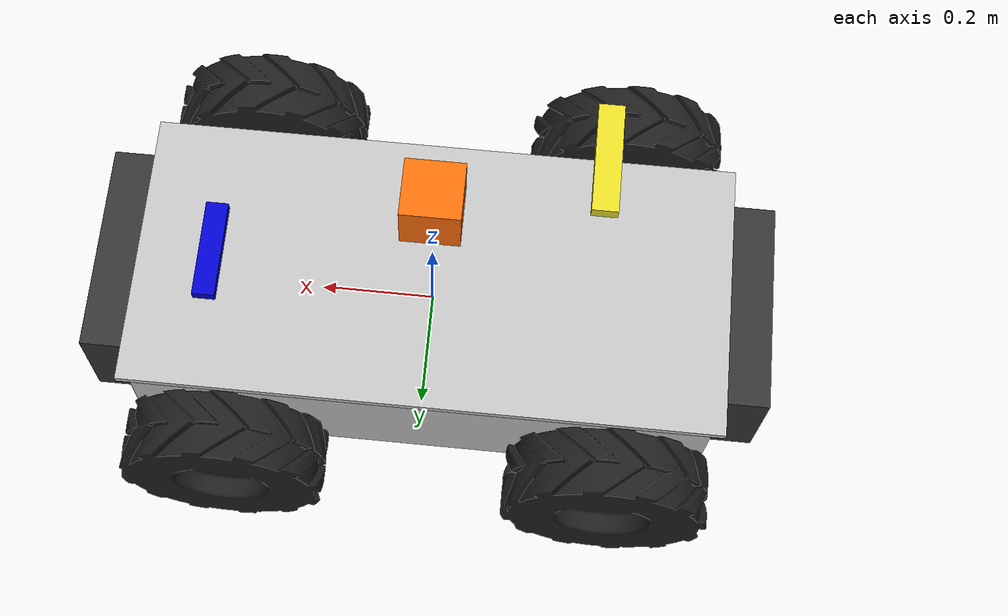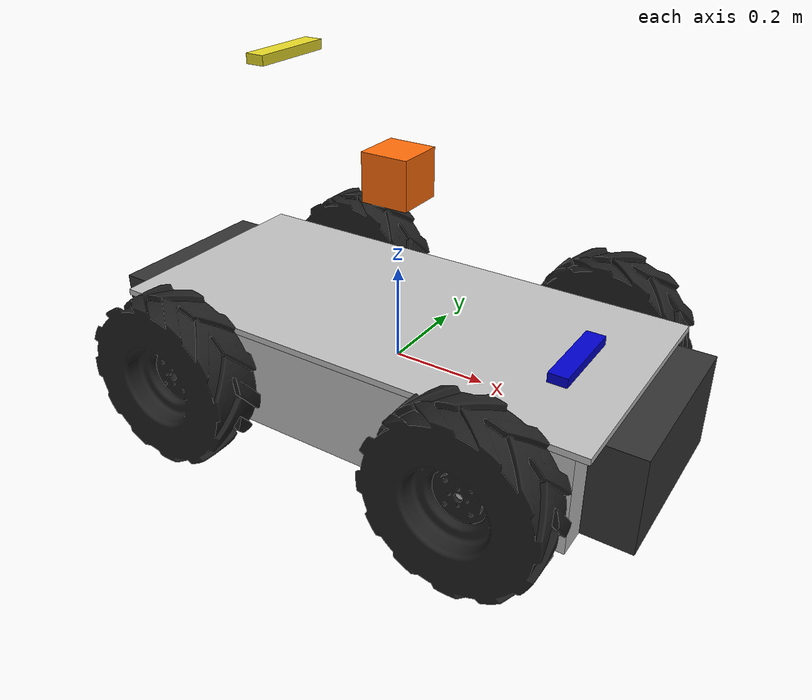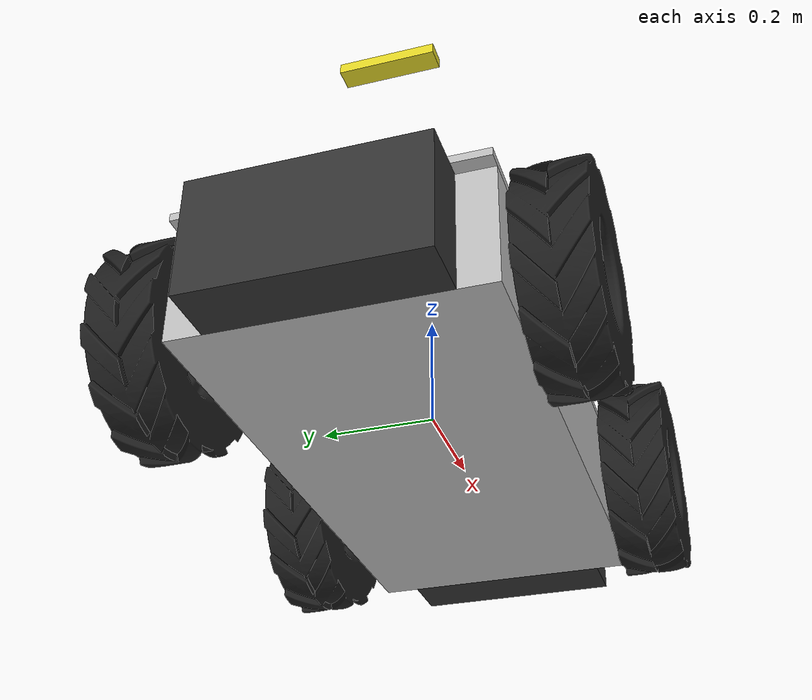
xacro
<?xml version="1.0"?>
<robot name="roverbot" xmlns:xacro="http://www.ros.org/wiki/xacro">

	<!--Link: Readme http://wiki.ros.org/urdf/XML/link-->
	<!--Joint: Readme http://wiki.ros.org/urdf/XML/joint-->

	<xacro:property name="PI" value="3.1415926535897931"/>

	<xacro:property name="chassisX" value="1"/>
	<xacro:property name="chassisY" value="0.5"/>
	<xacro:property name="chassisZ" value="0.20"/>
	<xacro:property name="chassisMass" value="25.0"/>

	<!-- Wheel Mounting Positions -->
	<xacro:property name="wheel_vertical_offset" value="0.03282" />

	<!-- Wheel Properties -->
	<xacro:property name="wheelLength" value="0.05" />
	<xacro:property name="wheelRadius" value="0.17775" />

	<xacro:property name="wheelMass" value="2.637"/>

	<xacro:include filename="$(find roverbot)/roverbot_description/urdf/roverbot.gazebo" />
	<xacro:include filename="$(find roverbot)/roverbot_description/urdf/materials.xacro" />
	<xacro:include filename="$(find roverbot)/roverbot_description/urdf/macros.xacro" />
	<xacro:include filename="$(find roverbot)/roverbot_description/urdf/roverbotWheel.xacro" />

	<!-- root link, on the ground just below the model origin -->
	<link name="footprint"/>

	<joint name="base_link_joint" type="fixed">
		<origin xyz="0 0 0" rpy="0 0 0" />
		<parent link="footprint"/>
		<child link="base_link" />
	</joint>

	<!--base_link-->
	<link name="base_link">
		<visual>
			<geometry>
				<box size="${chassisX} ${chassisY} ${chassisZ}"/>
			</geometry>
			<material name="silver"/>
		</visual>
		<collision>
			<origin xyz="0 0 ${chassisZ/4}" rpy="0 0 0" />
			<geometry>
				<box size="${chassisX} ${chassisY} ${chassisZ/2}"/>
			</geometry>
		</collision>
		<collision>
			<origin xyz="0 0 ${chassisZ*3/4}" rpy="0 0 0" />
			<geometry>
				<box size="${chassisX*4/5} ${chassisY} ${chassisZ/2}"/>
			</geometry>
		</collision>

		<inertial>
			<mass value="${chassisMass}"/>
			<box_inertia m="${chassisMass}" x="${chassisX}" y="${chassisY}" z="${chassisZ}"/>
		</inertial>
	</link>

	<!--Eje delantero-->

	<xacro:property name="AxleRadius" value="${wheelRadius/10}"/>
	<xacro:property name="AxleLenght" value="${chassisY+0.1}"/>
	<xacro:property name="AxleMass" value="1.0"/>

	<xacro:property name="AxlePositionX" value="${chassisX/3}"/>
	<xacro:property name="AxlePositionY" value="0"/>
	<xacro:property name="AxlePositionZ" value="0"/>

	<link name="frontAxle">
		<visual>
			<origin xyz="0 0 0" rpy="${PI/2} 0 0" />
			<geometry>
				<cylinder length="${AxleLenght}" radius="${AxleRadius}" />
			</geometry>
			<material name="silver"/>
		</visual>

		<inertial>
			<mass value="${AxleMass}"/>
			<cylinder_inertia m="${AxleMass}" r="${AxleRadius}" h="${AxleLenght}"/>
		<!--Esto esta sustituido en macros.xacros inertia inertia ixx="0.015" iyy="0.0375" izz="0.0375" ixy="0" ixz="0" iyz="0"/-->
		</inertial>
	</link>

	<joint name="frontAxle_joint" type="fixed">
		<parent link="base_link"/>
		<child link="frontAxle"/>
		<origin xyz="${AxlePositionX} ${AxlePositionY} ${AxlePositionZ}" rpy="0 0 0"/>
	</joint>

	<!--Eje trasero-->

	<link name="backAxle">
		<visual>
			<origin xyz="0 0 0" rpy="${PI/2} 0 0" />
			<geometry>
				<cylinder length="${AxleLenght}" radius="${AxleRadius}" />
			</geometry>
			<material name="silver"/>
		</visual>

		<inertial>
			<mass value="${AxleMass}"/>
			<cylinder_inertia m="${AxleMass}" r="${AxleRadius}" h="${AxleLenght}"/>
		<!--Esto esta sustituido en macros.xacros inertia inertia ixx="0.015" iyy="0.0375" izz="0.0375" ixy="0" ixz="0" iyz="0"/-->
		</inertial>
	</link>

	<joint name="backAxle_joint" type="fixed">
		<parent link="base_link"/>
		<child link="backAxle"/>
		<origin xyz="${-AxlePositionX} ${AxlePositionY} ${AxlePositionZ}"/>
	</joint>

	<!--llantas-->

	<xacro:property name="WheelPositionX" value="0"/>
	<xacro:property name="WheelPositionY" value="${(AxleLenght/2)+(wheelLength/2)}"/>
	<xacro:property name="WheelPositionZ" value="0"/>

	<!-- Roverbot wheel macros -->
	<xacro:roverbotWheel wheel="rightBackTire" axle="backAxle">
		<origin rpy="${-PI/2} 0 0" xyz="${WheelPositionX} ${-WheelPositionY} ${WheelPositionZ}"/>
	</xacro:roverbotWheel>
	<xacro:roverbotWheel wheel="leftBackTire" axle="backAxle">
		<origin rpy="${-PI/2} 0 0" xyz="${WheelPositionX} ${WheelPositionY} ${WheelPositionZ}"/>
	</xacro:roverbotWheel>
	<xacro:roverbotWheel wheel="rightFrontTire" axle="frontAxle">
		<origin rpy="${-PI/2} 0 0" xyz="${WheelPositionX} ${-WheelPositionY} ${WheelPositionZ}"/>
	</xacro:roverbotWheel>
	<xacro:roverbotWheel wheel="leftFrontTire" axle="frontAxle">
		<origin rpy="${-PI/2} 0 0" xyz="${WheelPositionX} ${WheelPositionY} ${WheelPositionZ}"/>
	</xacro:roverbotWheel>

	<!--Bumpers-->

	<xacro:property name="bumperLength" value="${chassisX/10}"/>
	<xacro:property name="bumperWidth" value="${chassisY-(chassisY/4)}"/>
	<xacro:property name="bumperHeight" value="${chassisZ}"/>
	<xacro:property name="bumperMass" value="0.4"/>

	<!--Bumper delantero-->

	<xacro:property name="bumperPositionX" value="${((chassisX/2)-AxlePositionX)+(bumperLength/2)}"/>
	<xacro:property name="bumperPositionY" value="0"/>
	<xacro:property name="bumperPositionZ" value="0"/>

	<link name="frontBumper">
		<collision>
			<geometry>
				<box size="${bumperLength} ${bumperWidth} ${bumperHeight}"/>
			</geometry>
		</collision>

		<visual>
			<geometry>
				<box size="${bumperLength} ${bumperWidth} ${bumperHeight}"/>
			</geometry>
			<material name="grey"/>
		</visual>

		<inertial>
			<mass value="${bumperMass}"/>
			<box_inertia m="${bumperMass}" x="${bumperLength}" y="${bumperWidth}" z="${bumperHeight}"/>
		</inertial>
	</link>

	<joint name="frontBumper_joint" type="fixed">
		<parent link="frontAxle"/>
		<child link="frontBumper"/>
		<origin xyz="${bumperPositionX} ${bumperPositionY} ${bumperPositionZ}" rpy="0 0 0" />
	</joint>

	<!--Bumper trasero-->

	<link name="BackBumper">
		<collision>
			<geometry>
				<box size="${bumperLength} ${bumperWidth} ${bumperHeight}"/>
			</geometry>
		</collision>

		<visual>
			<geometry>
				<box size="${bumperLength} ${bumperWidth} ${bumperHeight}"/>
			</geometry>
			<material name="grey"/>
		</visual>

		<inertial>
			<mass value="${bumperMass}"/>
			<box_inertia m="${bumperMass}" x="${bumperLength}" y="${bumperWidth}" z="${bumperHeight}"/>
		</inertial>
	</link>

	<joint name="BackBumper_joint" type="fixed">
		<parent link="backAxle"/>
		<child link="BackBumper"/>
		<origin xyz="${-bumperPositionX} ${bumperPositionY} ${bumperPositionZ}" rpy="0 0 0" />
	</joint>

	<!--Encerramiento componentes-->

	<xacro:property name="enclosureLength" value="${chassisX+bumperLength/2}"/>
	<xacro:property name="enclosureWidth" value="${chassisY}"/>
	<xacro:property name="enclosureHeight" value="${chassisZ/15}"/>
	<xacro:property name="enclosureMass" value="0.4"/>

	<xacro:property name="enclosurePositionX" value="0"/>
	<xacro:property name="enclosurePositionY" value="0"/>
	<xacro:property name="enclosurePositionZ" value="${(chassisZ/2)+(enclosureHeight/2)}"/>

	<link name="enclosure">
		<visual>
			<geometry>
				<box size="${enclosureLength} ${enclosureWidth} ${enclosureHeight}"/>
			</geometry>
			<material name="silver"/>
		</visual>

		<inertial>
			<mass value="${enclosureMass}"/>
			<box_inertia m="${enclosureMass}" x="${enclosureLength}" y="${enclosureWidth}" z="${enclosureHeight}"/>
		</inertial>
	</link>

	<joint name="enclosure_joint" type="fixed">
		<parent link="base_link"/>
		<child link="enclosure"/>
		<origin rpy="0 0 0" xyz="${enclosurePositionX} ${enclosurePositionY} ${enclosurePositionZ}"/>
	</joint>

	<!-- Interial link stores the robot's inertial information no me convese mucho-->

	<xacro:property name="inertialPositionX" value="-0.08748"/>
	<xacro:property name="inertialPositionY" value="-0.00085"/>
	<xacro:property name="inertialPositionZ" value="0.09947"/>
	<xacro:property name="cero" value="0"/>
	<xacro:property name="inertialMass" value="33.455"/>

	<link name="inertial_link">
		<inertial>
			<mass value="${inertialMass}"/>
			<origin xyz="${inertialPositionX} ${inertialPositionY} ${inertialPositionZ}"/>
			<inertia ixx="0.6022" ixy="-0.02364" ixz="-0.1197" iyy="1.7386" iyz="-0.001544" izz="2.0296"/>
		</inertial>
	</link>

	<joint name="inertial_joint" type="fixed">
		<origin xyz="0 0 0" rpy="0 0 0"/>
		<parent link="base_link"/>
		<child link="inertial_link"/>
	</joint>

	<!--link & joint sensor laser -->

	<xacro:property name="laserLength" value="0.1"/>
	<xacro:property name="laserWidth" value="0.1"/>
	<xacro:property name="laserHeight" value="0.1"/>
	<xacro:property name="laserMass" value="1e-5"/>

	<xacro:property name="laserPositionX" value="${chassisX-chassisX}"/>
	<xacro:property name="laserPositionY" value="${chassisY-chassisY}"/>
	<xacro:property name="laserPositionZ" value="${(chassisZ*2)}"/>

	<link name="laser_link">
		<visual>
			<geometry>
				<box size="${laserLength} ${laserWidth} ${laserHeight}"/>
			</geometry>
			<material name="orange"/>
		</visual>

		<inertial>
			<mass value="${laserMass}" />
			<box_inertia m="${laserMass}" x="${laserLength}" y="${laserWidth}" z="${laserHeight}"/>
		</inertial>
	</link>

	<joint name="laser_joint" type="fixed">
		<origin xyz="${laserPositionX} ${laserPositionY} ${laserPositionZ}" rpy="0 0 0"/>
		<parent link="base_link"/>
		<child link="laser_link"/>
	</joint>

	<!-- imu-->

	<xacro:property name="imuLength" value="0.01"/>
	<xacro:property name="imuWidth" value="0.01"/>
	<xacro:property name="imuHeight" value="0.01"/>
	<xacro:property name="imuMass" value="0.001"/>

	<xacro:property name="imuPositionX" value="${enclosureLength-enclosureLength}"/>
	<xacro:property name="imuPositionY" value="${enclosureWidth-enclosureWidth}"/>
	<xacro:property name="imuPositionZ" value="${(enclosureHeight/2)+(imuHeight/2)}"/>

	<xacro:property name="imuX" value="1"/>
	<xacro:property name="imuY" value="0"/>
	<xacro:property name="imuZ" value="0"/>

	<link name="imu_link">
		<collision>
			<geometry>
				<box size="${imuLength} ${imuWidth} ${imuHeight}"/>
			</geometry>
		</collision>

		<visual>
			<geometry>
				<box size="${imuLength} ${imuWidth} ${imuHeight}"/>
			</geometry>
			<material name="red"/>
		</visual>

		<inertial>
			<mass value="${imuMass}" />
			<box_inertia m="${imuMass}" x="${imuLength}" y="${imuWidth}" z="${imuHeight}"/>
		</inertial>
	</link>

	<joint name="imu_joint" type="fixed">
		<axis xyz="${imuX} ${imuY} ${imuZ}"/>
		<origin xyz="${imuPositionX} ${imuPositionY} ${imuPositionZ}"/>
		<parent link="base_link"/>
		<child link="imu_link"/>
  	</joint>

	<!--GPS-->

	<xacro:property name="gpsLength" value="0.04"/>
	<xacro:property name="gpsWidth" value="0.177"/>
	<xacro:property name="gpsHeight" value="0.020"/>
	<xacro:property name="gpsMass" value="1e-5"/>

	<xacro:property name="gpsPositionX" value="${-(enclosureLength/4)}"/>
	<xacro:property name="gpsPositionY" value="${enclosureWidth-enclosureWidth}"/>
	<xacro:property name="gpsPositionZ" value="${(chassisZ*3)}"/>

	<xacro:property name="gpsX" value="1"/>
	<xacro:property name="gpsY" value="0"/>
	<xacro:property name="gpsZ" value="0"/>

	<link name="gps_link">
		<collision>
			<geometry>
				<box size="${gpsLength} ${gpsWidth} ${gpsHeight}"/>
			</geometry>
		</collision>

		<visual>
			<geometry>
				<box size="${gpsLength} ${gpsWidth} ${gpsHeight}"/>
			</geometry>
			<material name="yellow"/>
		</visual>

		<inertial>
			<mass value="${gpsMass}" />
			<box_inertia m="${gpsMass}" x="${gpsLength}" y="${gpsWidth}" z="${gpsHeight}"/>
			<!--inertia ixx="1e-6" ixy="0" ixz="0" iyy="1e-6" iyz="0" izz="1e-6" /-->
		</inertial>
	</link>

	<joint name="gps_joint" type="fixed">
		<axis xyz="${gpsX} ${gpsY} ${gpsZ}"/>
		<origin xyz="${gpsPositionX} ${gpsPositionY} ${gpsPositionZ}"/>
		<parent link="base_link"/>
		<child link="gps_link"/>
  	</joint>

	<!--link & joint sensor kinect -->

	<xacro:property name="kinectLength" value="0.04"/>
	<xacro:property name="kinectWidth" value="0.177"/>
	<xacro:property name="kinectHeight" value="0.020"/>
	<xacro:property name="kinectMass" value="1e-5"/>

	<xacro:property name="kinectPositionX" value="${(enclosureLength/4)+(enclosureLength/8)}"/>
	<xacro:property name="kinectPositionY" value="${enclosureWidth-enclosureWidth}"/>
	<xacro:property name="kinectPositionZ" value="${(enclosureHeight/2)+(kinectHeight/2)}"/>

	<link name="kinect_link">
		<collision>
			<geometry>
				<box size="${kinectLength} ${kinectWidth} ${kinectHeight}"/>
			</geometry>
		</collision>

		<visual>
			<geometry>
				<box size="${kinectLength} ${kinectWidth} ${kinectHeight}"/>
			</geometry>
			<material name="blue"/>
		</visual>

		<inertial>
			<mass value="${kinectMass}" />
			<box_inertia m="${kinectMass}" x="${kinectLength}" y="${kinectWidth}" z="${kinectHeight}"/>
			<!--inertia ixx="1e-6" ixy="0" ixz="0" iyy="1e-6" iyz="0" izz="1e-6" /-->
		</inertial>
	</link>

	<joint name="kinect_joint" type="fixed">
		<origin xyz="${kinectPositionX} ${kinectPositionY} ${kinectPositionZ}" rpy="0 0 0"/>
		<parent link="enclosure"/>
		<child link="kinect_link"/>
	</joint>

</robot>

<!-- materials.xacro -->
<robot>

	<material name = "black">
		<color rgba="0.0 0.0 0.0 1.0"/>
	</material>

	<material name="blue">
		<color rgba="0.0 0.0 0.8 1.0"/>
	</material>

	<material name="green">
		<color rgba="0.0 0.8 0.0 1.0"/>
	</material>

	<material name="grey">
		<color rgba="0.2 0.2 0.2 1.0"/>
	</material>

	<material name="orange">
		<color rgba="${255/255} ${108/255} ${10/255} 1.0"/>
	</material>

	<material name="brown">
		<color rgba="${222/255} ${207/255} ${195/255} 1.0"/>
	</material>

	<material name="red">
		<color rgba="0.8 0.0 0.0 1.0"/>
	</material>

	<material name="white">
		<color rgba="1.0 1.0 1.0 1.0"/>
	</material>

	<material name="silver">
		<color rgba="0.75 0.75 0.75 1"/>
	</material>
</robot>

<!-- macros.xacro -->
<robot>
	<macro name="cylinder_inertia" params="m r h">
	  <inertia  ixx="${m*(3*r*r+h*h)/5}" ixy = "0" ixz = "0" iyy="${m*(3*r*r+h*h)/5}" iyz = "0" izz="${m*r*r/5}"/>
	</macro>

	<macro name="box_inertia" params="m x y z">
	  <inertia  ixx="${m*(y*y+z*z)/5}" ixy = "0" ixz = "0" iyy="${m*(x*x+z*z)/5}" iyz = "0" izz="${m*(x*x+z*z)/5}"/>
	</macro>

	<macro name="sphere_inertia" params="m r">
	  <inertia  ixx="${2*m*r*r/5}" ixy = "0" ixz = "0" iyy="${2*m*r*r/5}" iyz = "0" izz="${2*m*r*r/5}"/>
	</macro>
</robot>

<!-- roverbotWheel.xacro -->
<robot name="roverbotWheel" xmlns:xacro="http://ros.org/wiki/xacro">

	<xacro:macro name="roverbotWheel" params="wheel axle *joint_pose">
		<link name="${wheel}">
			<inertial>
				<mass value="${wheelMass}" />
				<origin xyz="0 0 0" />
				<!--inertia  ixx="0.02467" ixy="0" ixz="0" iyy="0.02467" iyz="0" izz="0.04411" /-->
				<cylinder_inertia m="${wheelMass}" r="${wheelRadius}" h="${wheelLength}"/>
			</inertial>
			<visual>
				<origin xyz="0 0 0" rpy="${PI/2} 0 0" />
				<geometry>
					<!--cylinder length="${wheelLength}" radius="${wheelRadius}" /-->
					<mesh filename="package://roverbot/roverbot_description/meshes/wheel.dae" />
				</geometry>
			</visual>
			<collision>
				<geometry>
					<cylinder length="${wheelLength}" radius="${wheelRadius}" />
				</geometry>
			</collision>
		</link>

		<gazebo reference="${wheel}">
			<mu1 value="1.0"/>
			<mu2 value="1.0"/>
			<kp value="10000000.0" />
			<kd value="1.0" />
			<fdir1 value="1 0 0"/>
		</gazebo>

		<joint name="${wheel}_joint" type="continuous">
			<parent link="${axle}"/>
			<child link="${wheel}"/>
			<xacro:insert_block name="joint_pose"/>
			<axis xyz="0 0 1" />
		</joint>

	</xacro:macro>
</robot>
